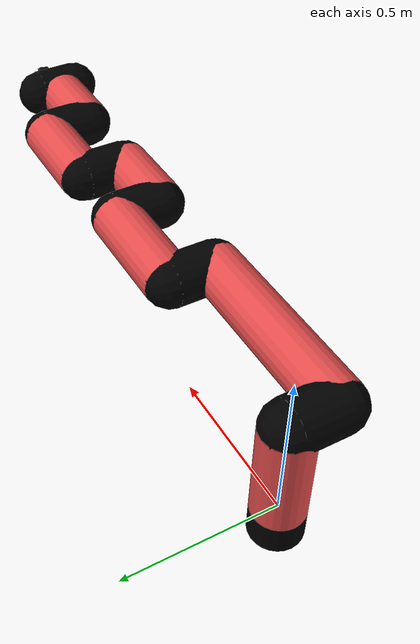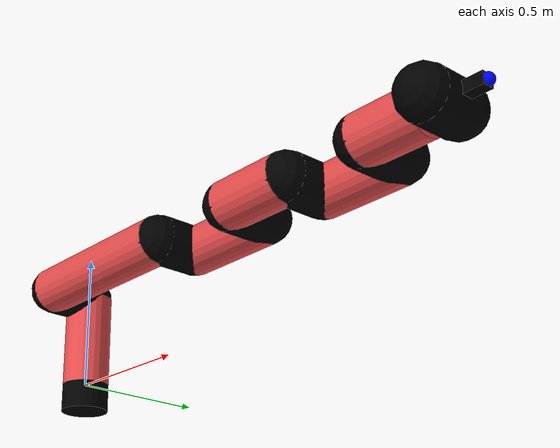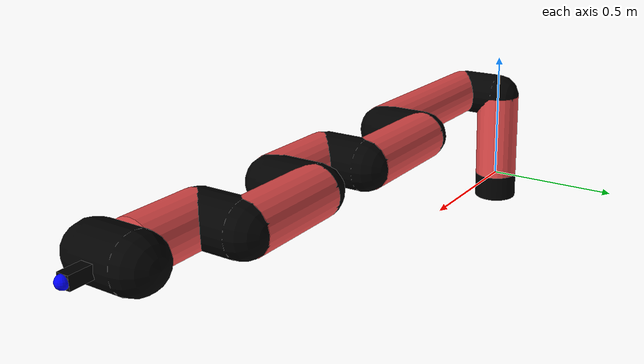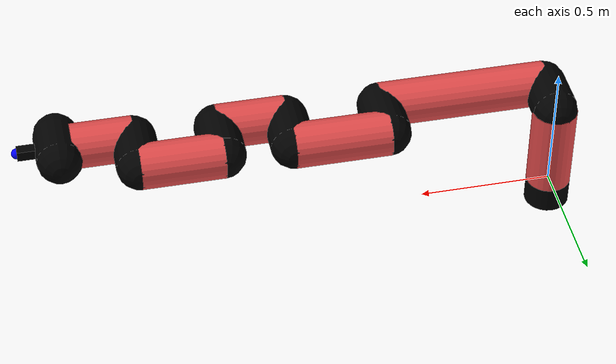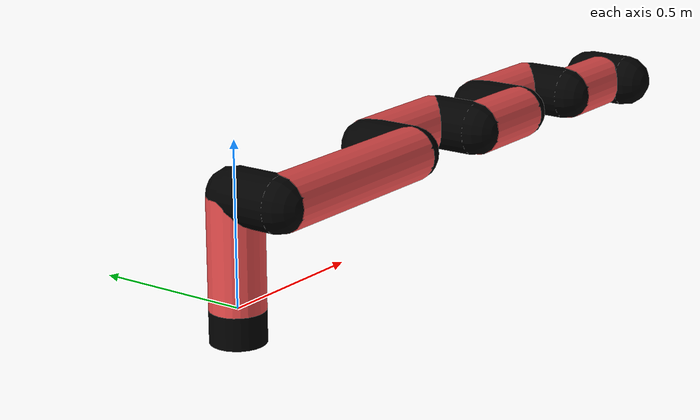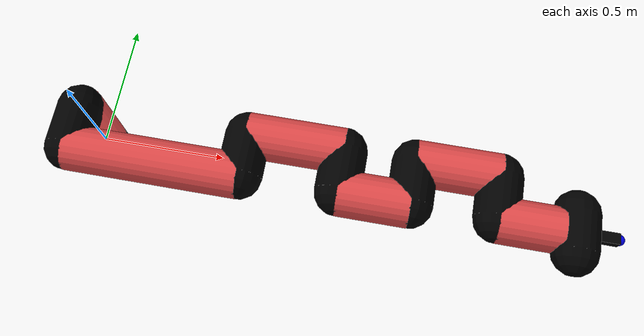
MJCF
<mujoco model="manipulator">
		<compiler angle="degree" coordinate="local" inertiafromgeom="auto" meshdir="meshes/"/>
		<option gravity="0 0 0" integrator="RK4" iterations="30" timestep="0.01"/>

		<default>
		<joint armature="1" limited="true" stiffness="10" damping="15" frictionloss="5.0"/>
		<geom conaffinity="1" condim="3" contype="1" friction=".5 .1 .1" margin="0.002"/>
		<motor ctrllimited="true"/>
		<position ctrllimited="true"/>
		</default>

		<asset>
		<texture builtin="gradient" height="100" rgb1="1.0 1.0 1.0" rgb2="1.0 1.0 1.0" type="skybox" width="100"/>
		<texture builtin="flat" height="32" name="arm_tex" rgb1="0.9 0.3 0.3" type="2d" width="32"/>
		<texture builtin="flat" height="32" name="gripper_tex" rgb1="0.0 0.0 0.0" type="cube" width="32"/>

		<material name="arm_mat" shininess="0.1" specular="0.1" texture="arm_tex"/>
		<material name="gripper_mat" shininess="1" specular="1" texture="gripper_tex"/>
		</asset>

		<worldbody>
		<light cutoff="45" diffuse=".8 .8 .8" dir="0 0.16 -1" directional="false" name="light" pos="0 -2.0 8.0" specular="0.3 0.3 0.3"/>

		<body name="base_link" pos="0 0 -0.1">
		<geom fromto="0 0 0 0 0 0.1" material="arm_mat" name="base_link" rgba="0.0 0.0 0.0 1" size="0.085" type="cylinder"/>
		</body>

		<body name="l1" pos="0 0 0">
<geom fromto="0 0 0 0 0 0.34" material="arm_mat" name="l1" rgba="0.9 0.3 0.3 1" size="0.085" type="cylinder"/>
<geom fromto="0 0 0.34 0 -0.16 0.34" material="arm_mat" name="l1_ex" rgba="0.0 0.0 0.0 1" size="0.085" type="capsule"/>
<joint axis="0 0 1" name="j1" pos="0 0 0" range="-90 90" damping="33.02" frictionloss="8.52"/>

<body name="l2" pos="0 -0.16 0.34">
<geom fromto="0 0 0 0.64 0 0" material="arm_mat" name="l2" rgba="0.9 0.3 0.3 1" size="0.085" type="cylinder"/>
<geom fromto="0.64 0 0 0.64 0.16 0" material="arm_mat" name="l2_ex" rgba="0.0 0.0 0.0 1" size="0.085" type="capsule"/>
<joint axis="0.0 1.0 0.0" name="j2" pos="0 0 0" range="-90 60" damping="35.55" frictionloss="10.3"/>

<body name="l3" pos="0.64 0.16 0">
<geom fromto="0 0 0 0.36 0 0" material="arm_mat" name="l3" rgba="0.9 0.3 0.3 1" size="0.085" type="cylinder"/>
<geom fromto="0.36 0 0 0.36 -0.16 0" material="arm_mat" name="l3_ex" rgba="0.0 0.0 0.0 1" size="0.085" type="capsule"/>
<joint axis="0.0 1.0 0.0" name="j3" pos="0 0 0" range="-30 60" damping="29.16" frictionloss="9.37"/>

<body name="l4" pos="0.36 -0.16 0">
<geom fromto="0 0 0 0.26 0 0" material="arm_mat" name="l4" rgba="0.9 0.3 0.3 1" size="0.085" type="cylinder"/>
<geom fromto="0.26 0 0 0.26 0.16 0" material="arm_mat" name="l4_ex" rgba="0.0 0.0 0.0 1" size="0.085" type="capsule"/>
<joint axis="0.0 1.0 0.0" name="j4" pos="0 0 0" range="-30 60" damping="21.44" frictionloss="10.88"/>

<body name="l5" pos="0.26 0.16 0">
<geom fromto="0 0 0 0.31 0 0" material="arm_mat" name="l5" rgba="0.9 0.3 0.3 1" size="0.085" type="cylinder"/>
<geom fromto="0.31 0 0 0.31 -0.16 0" material="arm_mat" name="l5_ex" rgba="0.0 0.0 0.0 1" size="0.085" type="capsule"/>
<joint axis="0.0 1.0 0.0" name="j5" pos="0 0 0" range="-30 60" damping="22.12" frictionloss="9.13"/>

<body name="l6" pos="0.31 -0.16 0">
<geom fromto="0 0 0 0.23 0 0" material="arm_mat" name="l6" rgba="0.9 0.3 0.3 1" size="0.085" type="cylinder"/>
<joint axis="0.0 1.0 0.0" name="j6" pos="0 0 0" range="-30 60" damping="25.66" frictionloss="11.97"/>

<body name="gripper" pos="0.23 0 0">
<geom fromto="0.05 -0.07 0 0.05 0.07 0" material="gripper_mat" name="gripper" rgba="0.0 0.0 0.0 1" size="0.085" type="capsule"/><joint axis="1 0 0" name="j7" pos="0 0 0" range="-90 90" damping="15" frictionloss="5.0"/><body name="finger" pos="0.1 0 0">
<geom fromto="0 0.0 0 0.1 0.0 0" material="gripper_mat" name="finger" rgba="0.0 0.0 0.0 1" size="0.020 0.06 0.06" type="box"/>
</body>
<site name="current" pos="0.2 0. 0.0" rgba="0. 0. 1.0 1" size="0.02" type="sphere"/>
</body>
</body>
</body>
</body>
</body>
</body>
</body>
</worldbody>
<actuator>
<motor ctrllimited="true" ctrlrange="-1.0 1.0" joint="j1" gear="59.09"/>
<motor ctrllimited="true" ctrlrange="-1.0 1.0" joint="j2" gear="81.99"/>
<motor ctrllimited="true" ctrlrange="-1.0 1.0" joint="j3" gear="72.26"/>
<motor ctrllimited="true" ctrlrange="-1.0 1.0" joint="j4" gear="76.0"/>
<motor ctrllimited="true" ctrlrange="-1.0 1.0" joint="j5" gear="62.64"/>
<motor ctrllimited="true" ctrlrange="-1.0 1.0" joint="j6" gear="75.09"/>
<motor ctrllimited="true" ctrlrange="-1.0 1.0" joint="j7" gear="80"/>
</actuator>
</mujoco>
